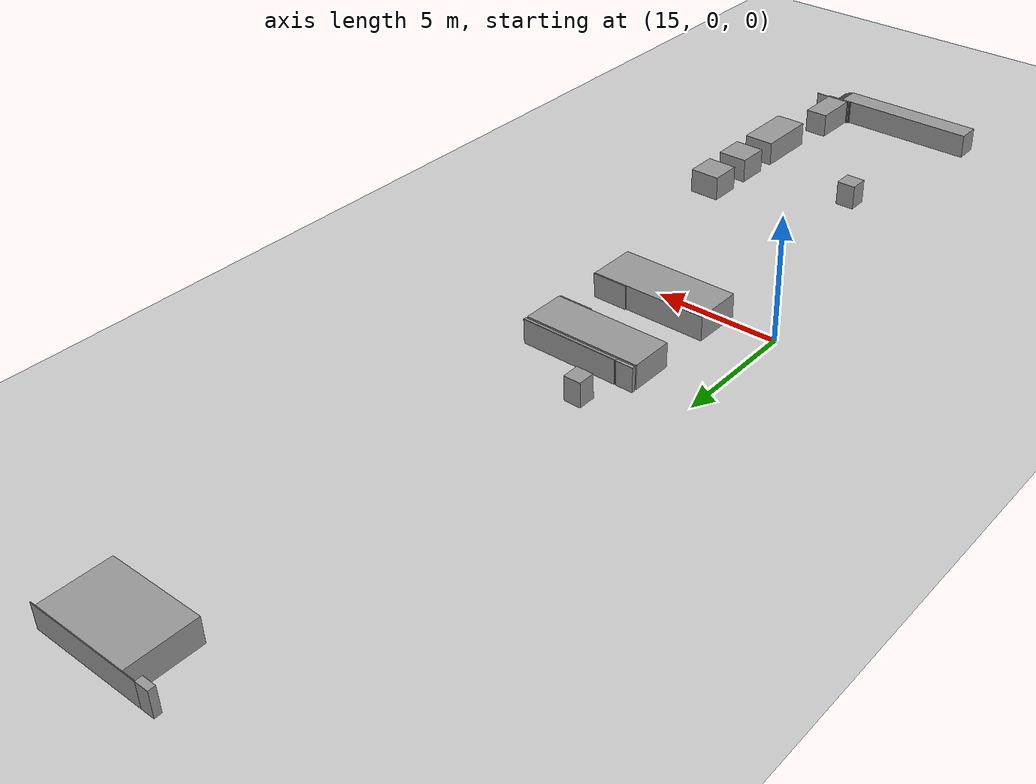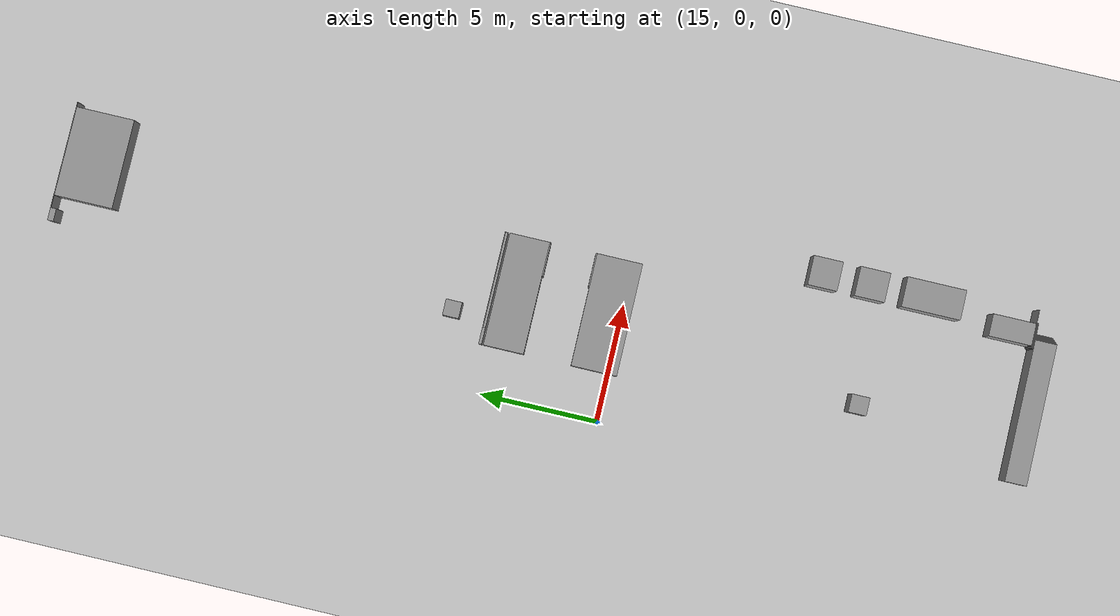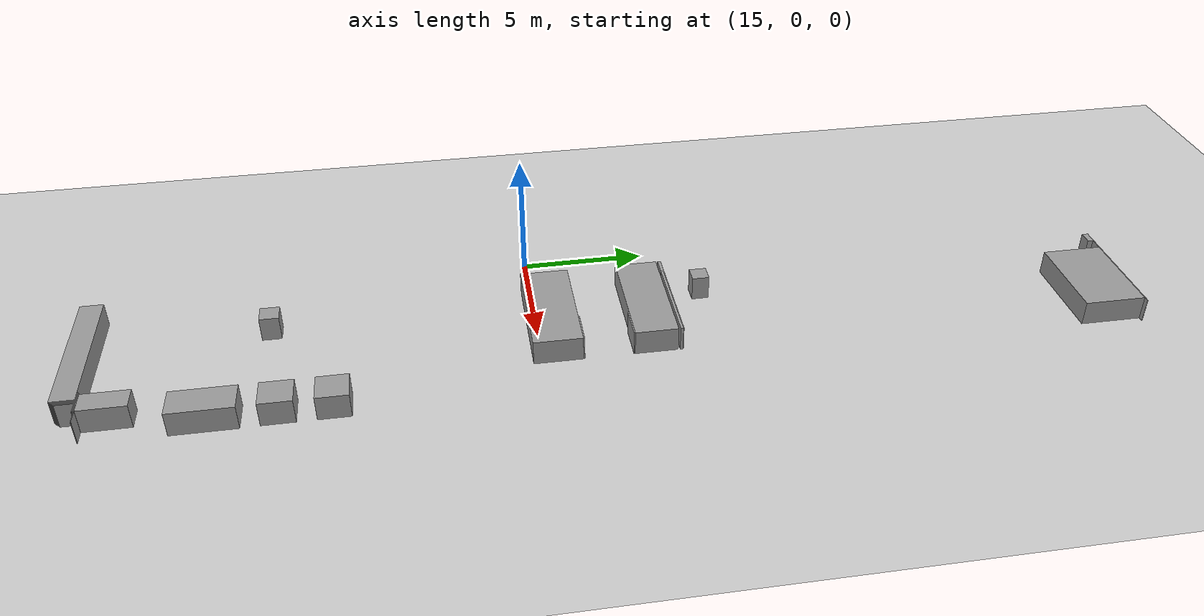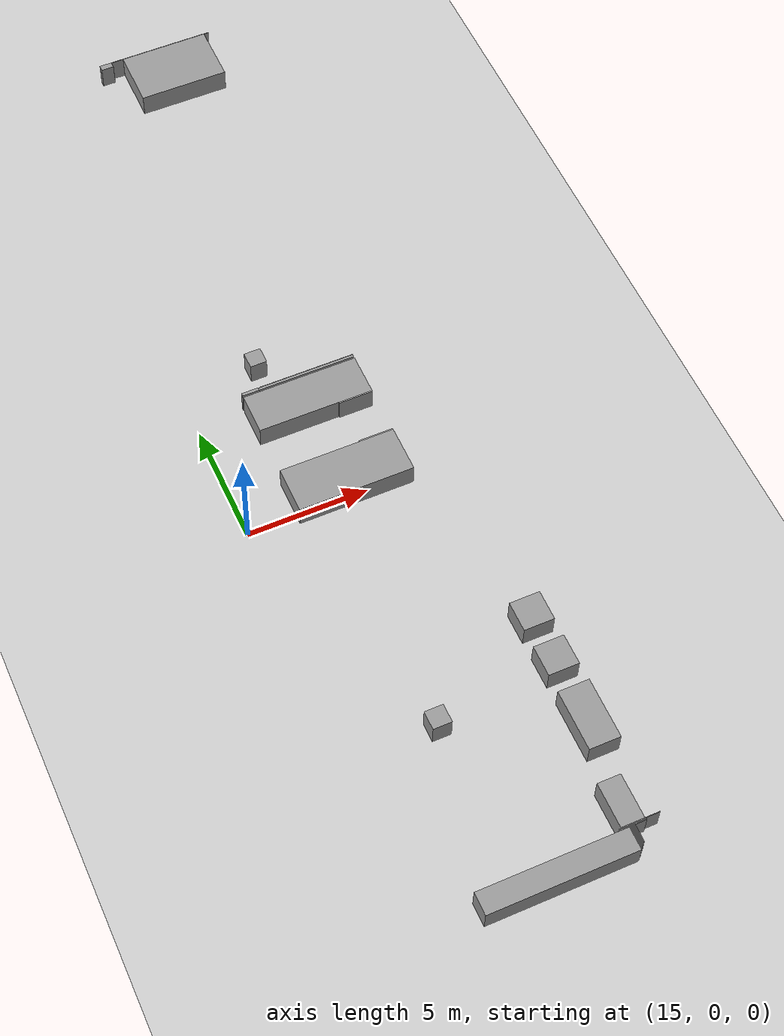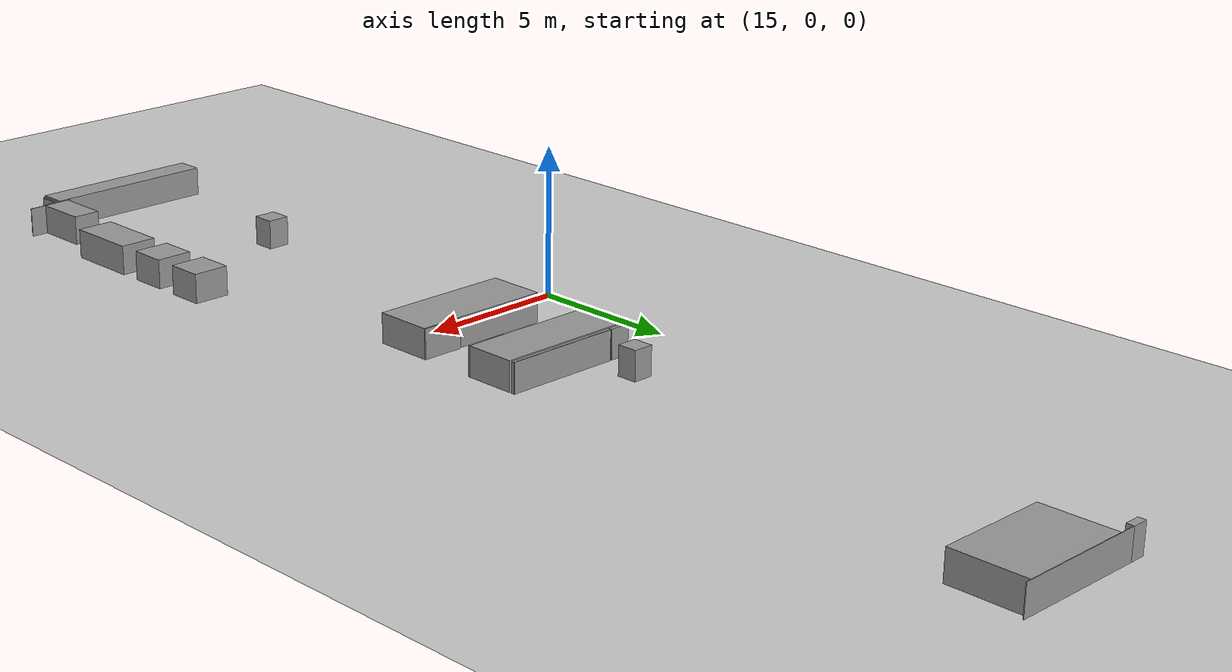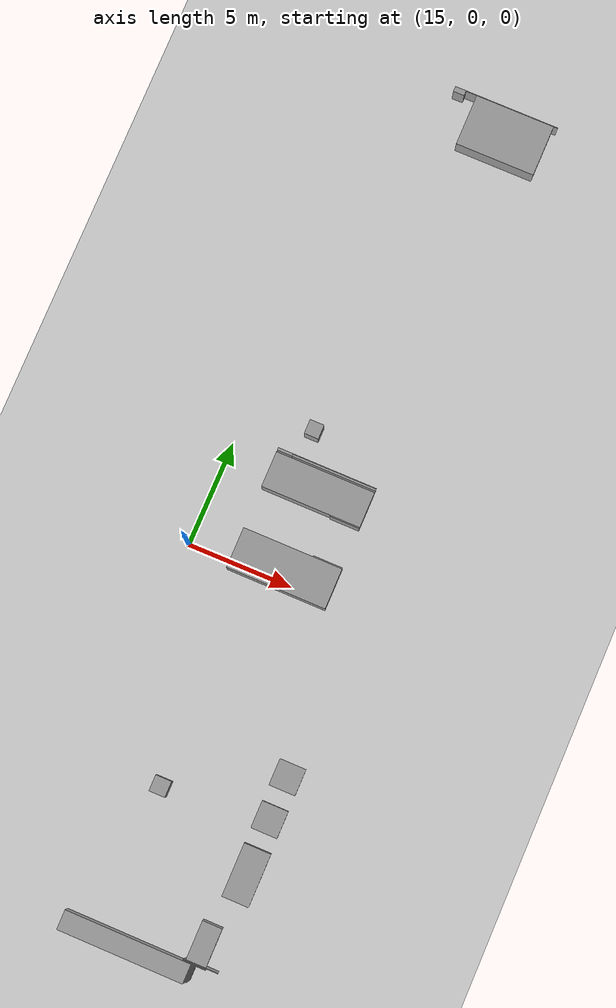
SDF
<sdf version="1.4">
 <world name="default">
  <model name="ground_plane">
   <static>1</static>
   <link name="link">
    <collision name="collision">
     <geometry><plane><normal>0 0 1</normal><size>100 100</size></plane></geometry>
     <surface><friction><ode><mu>100</mu><mu2>50</mu2></ode></friction></surface>
    </collision>
    <visual name="visual">
     <cast_shadows>0</cast_shadows>
     <geometry><plane><normal>0 0 1</normal><size>100 100</size></plane></geometry>
     <material>
      <script><uri>file://media/materials/scripts/gazebo.material</uri><name>Gazebo/Grey</name></script>
     </material>
    </visual>
    <velocity_decay><linear>0</linear><angular>0</angular></velocity_decay>
   </link>
  </model>
  <model name="walls">
   <static>1</static>
   <link name="Wall_59">
    <collision name="Wall_59_Collision">
     <geometry><box><size>0.91915 5.97447 1</size></box></geometry>
     <pose>5.41277 -26.4766 0.5 0 -0 0</pose>
    </collision>
    <visual name="Wall_59_Visual">
     <geometry><box><size>0.91915 5.97447 1</size></box></geometry>
     <material>
      <script><uri>file://media/materials/scripts/gazebo.material</uri><name>Gazebo/Grey</name></script>
     </material>
     <pose>5.41277 -26.4766 0.5 0 -0 0</pose>
    </visual>
    <velocity_decay><linear>0</linear><angular>0</angular></velocity_decay>
   </link>
   <link name="Wall_60">
    <collision name="Wall_60_Collision">
     <geometry><box><size>1.94043 4.77447 1</size></box></geometry>
     <pose>23.3617 -26.4128 0.5 0 -0 0</pose>
    </collision>
    <visual name="Wall_60_Visual">
     <geometry><box><size>1.94043 4.77447 1</size></box></geometry>
     <material>
      <script><uri>file://media/materials/scripts/gazebo.material</uri><name>Gazebo/Grey</name></script>
     </material>
     <pose>23.3617 -26.4128 0.5 0 -0 0</pose>
    </visual>
    <velocity_decay><linear>0</linear><angular>0</angular></velocity_decay>
   </link>
   <link name="Wall_61">
    <collision name="Wall_61_Collision">
     <geometry><box><size>1.71064 4.77447 1</size></box></geometry>
     <pose>27.2043 -26.4128 0.5 0 -0 0</pose>
    </collision>
    <visual name="Wall_61_Visual">
     <geometry><box><size>1.71064 4.77447 1</size></box></geometry>
     <material>
      <script><uri>file://media/materials/scripts/gazebo.material</uri><name>Gazebo/Grey</name></script>
     </material>
     <pose>27.2043 -26.4128 0.5 0 -0 0</pose>
    </visual>
    <velocity_decay><linear>0</linear><angular>0</angular></velocity_decay>
   </link>
   <link name="Wall_62">
    <collision name="Wall_62_Collision">
     <geometry><box><size>0.12766 0.71489 1</size></box></geometry>
     <pose>28.2 -24.383 0.5 0 -0 0</pose>
    </collision>
    <visual name="Wall_62_Visual">
     <geometry><box><size>0.12766 0.71489 1</size></box></geometry>
     <material>
      <script><uri>file://media/materials/scripts/gazebo.material</uri><name>Gazebo/Grey</name></script>
     </material>
     <pose>28.2 -24.383 0.5 0 -0 0</pose>
    </visual>
    <velocity_decay><linear>0</linear><angular>0</angular></velocity_decay>
   </link>
   <link name="Wall_63">
    <collision name="Wall_63_Collision">
     <geometry><box><size>0.10213 4.05957 1</size></box></geometry>
     <pose>28.1872 -26.7702 0.5 0 -0 0</pose>
    </collision>
    <visual name="Wall_63_Visual">
     <geometry><box><size>0.10213 4.05957 1</size></box></geometry>
     <material>
      <script><uri>file://media/materials/scripts/gazebo.material</uri><name>Gazebo/Grey</name></script>
     </material>
     <pose>28.1872 -26.7702 0.5 0 -0 0</pose>
    </visual>
    <velocity_decay><linear>0</linear><angular>0</angular></velocity_decay>
   </link>
   <link name="Wall_64">
    <collision name="Wall_64_Collision">
     <geometry><box><size>0.76596 0.76596 1</size></box></geometry>
     <pose>12.383 -25.1745 0.5 0 -0 0</pose>
    </collision>
    <visual name="Wall_64_Visual">
     <geometry><box><size>0.76596 0.76596 1</size></box></geometry>
     <material>
      <script><uri>file://media/materials/scripts/gazebo.material</uri><name>Gazebo/Grey</name></script>
     </material>
     <pose>12.383 -25.1745 0.5 0 -0 0</pose>
    </visual>
    <velocity_decay><linear>0</linear><angular>0</angular></velocity_decay>
   </link>
   <link name="Wall_65">
    <collision name="Wall_65_Collision">
     <geometry><box><size>0.02553 4.00851 1</size></box></geometry>
     <pose>28.2511 -26.7957 0.5 0 -0 0</pose>
    </collision>
    <visual name="Wall_65_Visual">
     <geometry><box><size>0.02553 4.00851 1</size></box></geometry>
     <material>
      <script><uri>file://media/materials/scripts/gazebo.material</uri><name>Gazebo/Grey</name></script>
     </material>
     <pose>28.2511 -26.7957 0.5 0 -0 0</pose>
    </visual>
    <velocity_decay><linear>0</linear><angular>0</angular></velocity_decay>
   </link>
   <link name="Wall_66">
    <collision name="Wall_66_Collision">
     <geometry><box><size>0.68936 0.68936 1</size></box></geometry>
     <pose>29.6553 -25.1872 0.5 0 -0 0</pose>
    </collision>
    <visual name="Wall_66_Visual">
     <geometry><box><size>0.68936 0.68936 1</size></box></geometry>
     <material>
      <script><uri>file://media/materials/scripts/gazebo.material</uri><name>Gazebo/Grey</name></script>
     </material>
     <pose>29.6553 -25.1872 0.5 0 -0 0</pose>
    </visual>
    <velocity_decay><linear>0</linear><angular>0</angular></velocity_decay>
   </link>
   <link name="Wall_67">
    <collision name="Wall_67_Collision">
     <geometry><box><size>0.25532 0.53617 1</size></box></geometry>
     <pose>46.7745 -25.1872 0.5 0 -0 0</pose>
    </collision>
    <visual name="Wall_67_Visual">
     <geometry><box><size>0.25532 0.53617 1</size></box></geometry>
     <material>
      <script><uri>file://media/materials/scripts/gazebo.material</uri><name>Gazebo/Grey</name></script>
     </material>
     <pose>46.7745 -25.1872 0.5 0 -0 0</pose>
    </visual>
    <velocity_decay><linear>0</linear><angular>0</angular></velocity_decay>
   </link>
   <link name="Wall_68">
    <collision name="Wall_68_Collision">
     <geometry><box><size>0.02553 4.54468 1</size></box></geometry>
     <pose>46.8894 -27.7277 0.5 0 -0 0</pose>
    </collision>
    <visual name="Wall_68_Visual">
     <geometry><box><size>0.02553 4.54468 1</size></box></geometry>
     <material>
      <script><uri>file://media/materials/scripts/gazebo.material</uri><name>Gazebo/Grey</name></script>
     </material>
     <pose>46.8894 -27.7277 0.5 0 -0 0</pose>
    </visual>
    <velocity_decay><linear>0</linear><angular>0</angular></velocity_decay>
   </link>
   <link name="Wall_69">
    <collision name="Wall_69_Collision">
     <geometry><box><size>2.4766 3.80426 1</size></box></geometry>
     <pose>45.6383 -27.8936 0.5 0 -0 0</pose>
    </collision>
    <visual name="Wall_69_Visual">
     <geometry><box><size>2.4766 3.80426 1</size></box></geometry>
     <material>
      <script><uri>file://media/materials/scripts/gazebo.material</uri><name>Gazebo/Grey</name></script>
     </material>
     <pose>45.6383 -27.8936 0.5 0 -0 0</pose>
    </visual>
    <velocity_decay><linear>0</linear><angular>0</angular></velocity_decay>
   </link>
   <link name="Wall_70">
    <collision name="Wall_70_Collision">
     <geometry><box><size>0.05106 1.42979 1</size></box></geometry>
     <pose>24.3575 -28.0851 0.5 0 -0 0</pose>
    </collision>
    <visual name="Wall_70_Visual">
     <geometry><box><size>0.05106 1.42979 1</size></box></geometry>
     <material>
      <script><uri>file://media/materials/scripts/gazebo.material</uri><name>Gazebo/Grey</name></script>
     </material>
     <pose>24.3575 -28.0851 0.5 0 -0 0</pose>
    </visual>
    <velocity_decay><linear>0</linear><angular>0</angular></velocity_decay>
   </link>
   <link name="Wall_71">
    <collision name="Wall_71_Collision">
     <geometry><box><size>0.05106 1.42979 1</size></box></geometry>
     <pose>26.3234 -28.0851 0.5 0 -0 0</pose>
    </collision>
    <visual name="Wall_71_Visual">
     <geometry><box><size>0.05106 1.42979 1</size></box></geometry>
     <material>
      <script><uri>file://media/materials/scripts/gazebo.material</uri><name>Gazebo/Grey</name></script>
     </material>
     <pose>26.3234 -28.0851 0.5 0 -0 0</pose>
    </visual>
    <velocity_decay><linear>0</linear><angular>0</angular></velocity_decay>
   </link>
   <link name="Wall_72">
    <collision name="Wall_72_Collision">
     <geometry><box><size>0.02553 1.09787 1</size></box></geometry>
     <pose>5.88511 -29.6043 0.5 0 -0 0</pose>
    </collision>
    <visual name="Wall_72_Visual">
     <geometry><box><size>0.02553 1.09787 1</size></box></geometry>
     <material>
      <script><uri>file://media/materials/scripts/gazebo.material</uri><name>Gazebo/Grey</name></script>
     </material>
     <pose>5.88511 -29.6043 0.5 0 -0 0</pose>
    </visual>
    <velocity_decay><linear>0</linear><angular>0</angular></velocity_decay>
   </link>
   <link name="Wall_73">
    <collision name="Wall_73_Collision">
     <geometry><box><size>0.02553 1.07234 1</size></box></geometry>
     <pose>5.91064 -29.617 0.5 0 -0 0</pose>
    </collision>
    <visual name="Wall_73_Visual">
     <geometry><box><size>0.02553 1.07234 1</size></box></geometry>
     <material>
      <script><uri>file://media/materials/scripts/gazebo.material</uri><name>Gazebo/Grey</name></script>
     </material>
     <pose>5.91064 -29.617 0.5 0 -0 0</pose>
    </visual>
    <velocity_decay><linear>0</linear><angular>0</angular></velocity_decay>
   </link>
   <link name="Wall_74">
    <collision name="Wall_74_Collision">
     <geometry><box><size>0.02553 1.04681 1</size></box></geometry>
     <pose>5.93617 -29.6298 0.5 0 -0 0</pose>
    </collision>
    <visual name="Wall_74_Visual">
     <geometry><box><size>0.02553 1.04681 1</size></box></geometry>
     <material>
      <script><uri>file://media/materials/scripts/gazebo.material</uri><name>Gazebo/Grey</name></script>
     </material>
     <pose>5.93617 -29.6298 0.5 0 -0 0</pose>
    </visual>
    <velocity_decay><linear>0</linear><angular>0</angular></velocity_decay>
   </link>
   <link name="Wall_75">
    <collision name="Wall_75_Collision">
     <geometry><box><size>0.02553 1.55745 1</size></box></geometry>
     <pose>5.9617 -29.9362 0.5 0 -0 0</pose>
    </collision>
    <visual name="Wall_75_Visual">
     <geometry><box><size>0.02553 1.55745 1</size></box></geometry>
     <material>
      <script><uri>file://media/materials/scripts/gazebo.material</uri><name>Gazebo/Grey</name></script>
     </material>
     <pose>5.9617 -29.9362 0.5 0 -0 0</pose>
    </visual>
    <velocity_decay><linear>0</linear><angular>0</angular></velocity_decay>
   </link>
   <link name="Wall_76">
    <collision name="Wall_76_Collision">
     <geometry><box><size>1.81277 0.94468 1</size></box></geometry>
     <pose>6.88085 -29.6553 0.5 0 -0 0</pose>
    </collision>
    <visual name="Wall_76_Visual">
     <geometry><box><size>1.81277 0.94468 1</size></box></geometry>
     <material>
      <script><uri>file://media/materials/scripts/gazebo.material</uri><name>Gazebo/Grey</name></script>
     </material>
     <pose>6.88085 -29.6553 0.5 0 -0 0</pose>
    </visual>
    <velocity_decay><linear>0</linear><angular>0</angular></velocity_decay>
   </link>
   <link name="Wall_77">
    <collision name="Wall_77_Collision">
     <geometry><box><size>0.89362 0.02553 1</size></box></geometry>
     <pose>5.42553 -29.4766 0.5 0 -0 0</pose>
    </collision>
    <visual name="Wall_77_Visual">
     <geometry><box><size>0.89362 0.02553 1</size></box></geometry>
     <material>
      <script><uri>file://media/materials/scripts/gazebo.material</uri><name>Gazebo/Grey</name></script>
     </material>
     <pose>5.42553 -29.4766 0.5 0 -0 0</pose>
    </visual>
    <velocity_decay><linear>0</linear><angular>0</angular></velocity_decay>
   </link>
   <link name="Wall_78">
    <collision name="Wall_78_Collision">
     <geometry><box><size>0.86809 0.02553 1</size></box></geometry>
     <pose>5.4383 -29.5021 0.5 0 -0 0</pose>
    </collision>
    <visual name="Wall_78_Visual">
     <geometry><box><size>0.86809 0.02553 1</size></box></geometry>
     <material>
      <script><uri>file://media/materials/scripts/gazebo.material</uri><name>Gazebo/Grey</name></script>
     </material>
     <pose>5.4383 -29.5021 0.5 0 -0 0</pose>
    </visual>
    <velocity_decay><linear>0</linear><angular>0</angular></velocity_decay>
   </link>
   <link name="Wall_79">
    <collision name="Wall_79_Collision">
     <geometry><box><size>0.84255 0.02553 1</size></box></geometry>
     <pose>5.45106 -29.5277 0.5 0 -0 0</pose>
    </collision>
    <visual name="Wall_79_Visual">
     <geometry><box><size>0.84255 0.02553 1</size></box></geometry>
     <material>
      <script><uri>file://media/materials/scripts/gazebo.material</uri><name>Gazebo/Grey</name></script>
     </material>
     <pose>5.45106 -29.5277 0.5 0 -0 0</pose>
    </visual>
    <velocity_decay><linear>0</linear><angular>0</angular></velocity_decay>
   </link>
   <link name="Wall_80">
    <collision name="Wall_80_Collision">
     <geometry><box><size>0.81702 0.02553 1</size></box></geometry>
     <pose>5.46383 -29.5532 0.5 0 -0 0</pose>
    </collision>
    <visual name="Wall_80_Visual">
     <geometry><box><size>0.81702 0.02553 1</size></box></geometry>
     <material>
      <script><uri>file://media/materials/scripts/gazebo.material</uri><name>Gazebo/Grey</name></script>
     </material>
     <pose>5.46383 -29.5532 0.5 0 -0 0</pose>
    </visual>
    <velocity_decay><linear>0</linear><angular>0</angular></velocity_decay>
   </link>
   <link name="Wall_81">
    <collision name="Wall_81_Collision">
     <geometry><box><size>2.50213 1.2766 1</size></box></geometry>
     <pose>10.3149 -30.1787 0.5 0 -0 0</pose>
    </collision>
    <visual name="Wall_81_Visual">
     <geometry><box><size>2.50213 1.2766 1</size></box></geometry>
     <material>
      <script><uri>file://media/materials/scripts/gazebo.material</uri><name>Gazebo/Grey</name></script>
     </material>
     <pose>10.3149 -30.1787 0.5 0 -0 0</pose>
    </visual>
    <velocity_decay><linear>0</linear><angular>0</angular></velocity_decay>
   </link>
   <link name="Wall_82">
    <collision name="Wall_82_Collision">
     <geometry><box><size>1.2766 1.25106 1</size></box></geometry>
     <pose>12.9192 -30.166 0.5 0 -0 0</pose>
    </collision>
    <visual name="Wall_82_Visual">
     <geometry><box><size>1.2766 1.25106 1</size></box></geometry>
     <material>
      <script><uri>file://media/materials/scripts/gazebo.material</uri><name>Gazebo/Grey</name></script>
     </material>
     <pose>12.9192 -30.166 0.5 0 -0 0</pose>
    </visual>
    <velocity_decay><linear>0</linear><angular>0</angular></velocity_decay>
   </link>
   <link name="Wall_83">
    <collision name="Wall_83_Collision">
     <geometry><box><size>1.25106 1.25106 1</size></box></geometry>
     <pose>14.9234 -30.166 0.5 0 -0 0</pose>
    </collision>
    <visual name="Wall_83_Visual">
     <geometry><box><size>1.25106 1.25106 1</size></box></geometry>
     <material>
      <script><uri>file://media/materials/scripts/gazebo.material</uri><name>Gazebo/Grey</name></script>
     </material>
     <pose>14.9234 -30.166 0.5 0 -0 0</pose>
    </visual>
    <velocity_decay><linear>0</linear><angular>0</angular></velocity_decay>
   </link>
   <link name="Wall_84">
    <collision name="Wall_84_Collision">
     <geometry><box><size>0.79149 0.02553 1</size></box></geometry>
     <pose>5.4766 -29.5787 0.5 0 -0 0</pose>
    </collision>
    <visual name="Wall_84_Visual">
     <geometry><box><size>0.79149 0.02553 1</size></box></geometry>
     <material>
      <script><uri>file://media/materials/scripts/gazebo.material</uri><name>Gazebo/Grey</name></script>
     </material>
     <pose>5.4766 -29.5787 0.5 0 -0 0</pose>
    </visual>
    <velocity_decay><linear>0</linear><angular>0</angular></velocity_decay>
   </link>
   <link name="Wall_85">
    <collision name="Wall_85_Collision">
     <geometry><box><size>0.76596 0.02553 1</size></box></geometry>
     <pose>5.48936 -29.6043 0.5 0 -0 0</pose>
    </collision>
    <visual name="Wall_85_Visual">
     <geometry><box><size>0.76596 0.02553 1</size></box></geometry>
     <material>
      <script><uri>file://media/materials/scripts/gazebo.material</uri><name>Gazebo/Grey</name></script>
     </material>
     <pose>5.48936 -29.6043 0.5 0 -0 0</pose>
    </visual>
    <velocity_decay><linear>0</linear><angular>0</angular></velocity_decay>
   </link>
   <link name="Wall_86">
    <collision name="Wall_86_Collision">
     <geometry><box><size>0.74043 0.02553 1</size></box></geometry>
     <pose>5.50213 -29.6298 0.5 0 -0 0</pose>
    </collision>
    <visual name="Wall_86_Visual">
     <geometry><box><size>0.74043 0.02553 1</size></box></geometry>
     <material>
      <script><uri>file://media/materials/scripts/gazebo.material</uri><name>Gazebo/Grey</name></script>
     </material>
     <pose>5.50213 -29.6298 0.5 0 -0 0</pose>
    </visual>
    <velocity_decay><linear>0</linear><angular>0</angular></velocity_decay>
   </link>
   <link name="Wall_87">
    <collision name="Wall_87_Collision">
     <geometry><box><size>0.71489 0.02553 1</size></box></geometry>
     <pose>5.51489 -29.6553 0.5 0 -0 0</pose>
    </collision>
    <visual name="Wall_87_Visual">
     <geometry><box><size>0.71489 0.02553 1</size></box></geometry>
     <material>
      <script><uri>file://media/materials/scripts/gazebo.material</uri><name>Gazebo/Grey</name></script>
     </material>
     <pose>5.51489 -29.6553 0.5 0 -0 0</pose>
    </visual>
    <velocity_decay><linear>0</linear><angular>0</angular></velocity_decay>
   </link>
   <link name="Wall_88">
    <collision name="Wall_88_Collision">
     <geometry><box><size>0.68936 0.02553 1</size></box></geometry>
     <pose>5.52766 -29.6808 0.5 0 -0 0</pose>
    </collision>
    <visual name="Wall_88_Visual">
     <geometry><box><size>0.68936 0.02553 1</size></box></geometry>
     <material>
      <script><uri>file://media/materials/scripts/gazebo.material</uri><name>Gazebo/Grey</name></script>
     </material>
     <pose>5.52766 -29.6808 0.5 0 -0 0</pose>
    </visual>
    <velocity_decay><linear>0</linear><angular>0</angular></velocity_decay>
   </link>
   <pose>-7 -22.75 0 0 -0 1.5708</pose>
  </model>
 </world>
</sdf>
